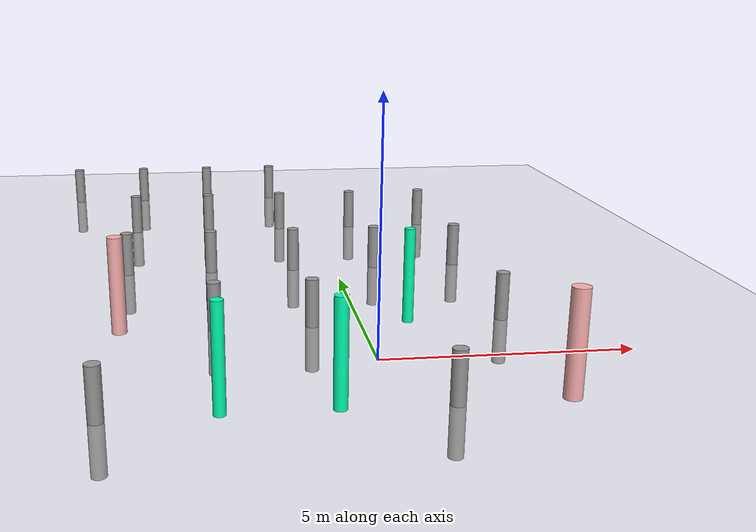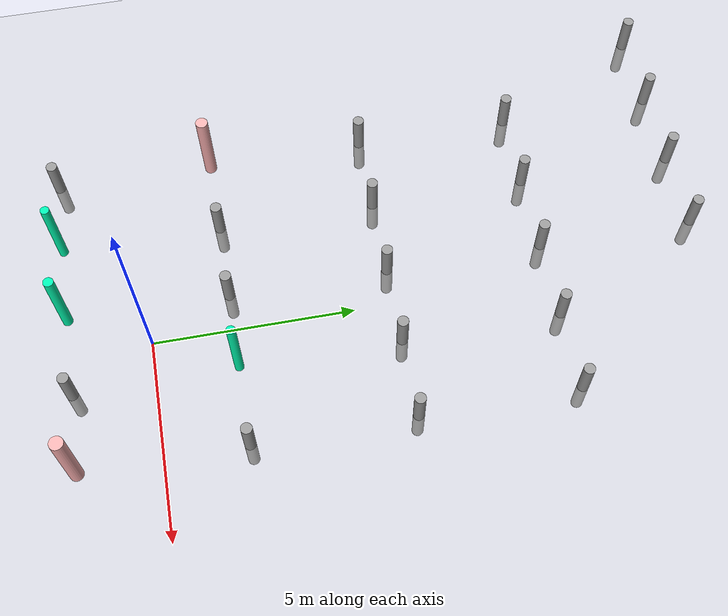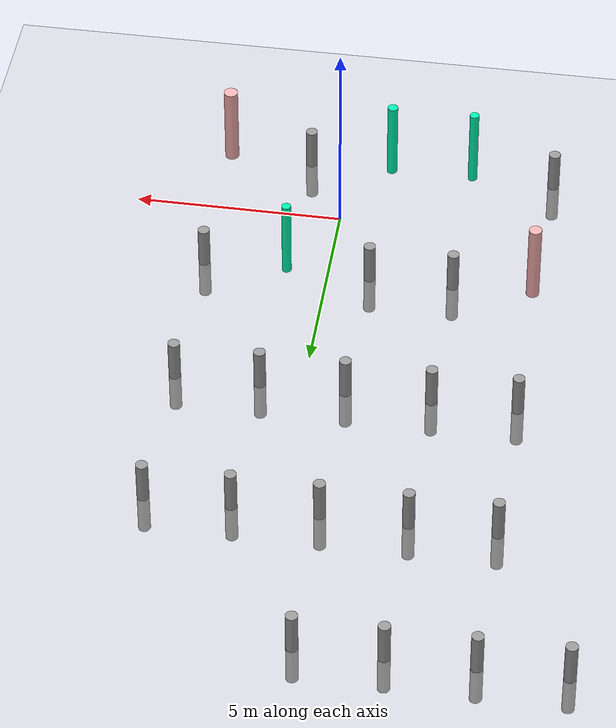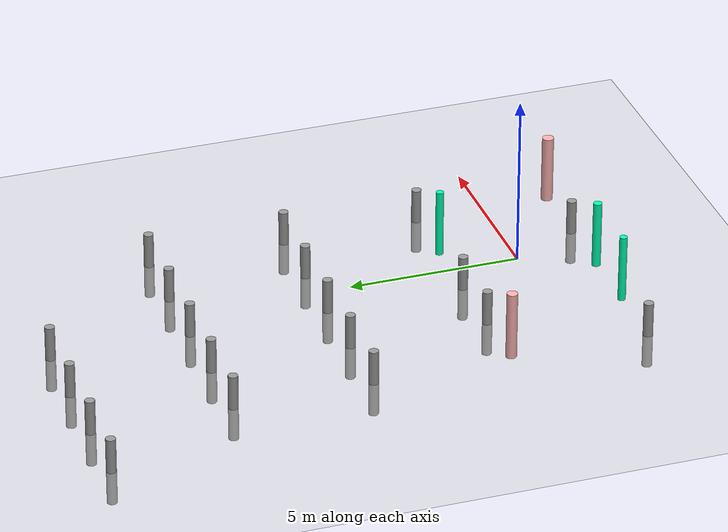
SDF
<sdf version="1.6">
 <world name="default">
  <model name="ground_plane">
   <static>1</static>
   <link name="link">
    <collision name="collision">
     <geometry><plane><normal>0 0 1</normal><size>100 100</size></plane></geometry>
     <surface><friction><ode><mu>100</mu><mu2>50</mu2></ode></friction></surface>
    </collision>
    <visual name="visual">
     <cast_shadows>0</cast_shadows>
     <geometry><plane><normal>0 0 1</normal><size>100 100</size></plane></geometry>
     <material>
      <script><uri>file://media/materials/scripts/gazebo.material</uri><name>Gazebo/Grey</name></script>
     </material>
    </visual>
   </link>
  </model>
  <model name="my_cylinder014_clone_53">
   <pose>-5 -2 0 0 -0 0</pose>
   <link name="my_cylinder014::link">
    <inertial>
     <mass>1</mass>
     <inertia><ixx>0.145833</ixx><ixy>0</ixy><ixz>0</ixz><iyy>0.145833</iyy><iyz>0</iyz><izz>0.125</izz></inertia>
    </inertial>
    <visual name="visual">
     <geometry><cylinder><radius>0.14</radius><length>2</length></cylinder></geometry>
     <material>
      <script><name>Gazebo/Grey</name><uri>file://media/materials/scripts/gazebo.material</uri></script>
      <ambient>0.3 0.3 0.3 1</ambient>
      <diffuse>0.7 0.7 0.7 1</diffuse>
      <specular>1 0.01 0.01 1</specular>
      <emissive>0 0 0 1</emissive>
      <shader type="vertex"><normal_map>__default__</normal_map></shader>
     </material>
    </visual>
    <collision name="collision">
     <geometry><cylinder><radius>0.14</radius><length>2</length></cylinder></geometry>
     <surface>
      <friction>
       <ode><mu>1</mu><mu2>1</mu2><fdir1>0 0 0</fdir1><slip1>0</slip1><slip2>0</slip2></ode>
       <torsional>
        <coefficient>1</coefficient>
        <patch_radius>0</patch_radius>
        <surface_radius>0</surface_radius>
        <use_patch_radius>1</use_patch_radius>
        <ode><slip>0</slip></ode>
       </torsional>
      </friction>
      <bounce><restitution_coefficient>0</restitution_coefficient><threshold>1e+06</threshold></bounce>
      <contact>
       <collide_without_contact>0</collide_without_contact>
       <collide_without_contact_bitmask>1</collide_without_contact_bitmask>
       <collide_bitmask>1</collide_bitmask>
       <ode>
        <soft_cfm>0</soft_cfm>
        <soft_erp>0.2</soft_erp>
        <kp>1e+13</kp>
        <kd>1</kd>
        <max_vel>0.01</max_vel>
        <min_depth>0</min_depth>
       </ode>
       <bullet>
        <split_impulse>1</split_impulse>
        <split_impulse_penetration_threshold>-0.01</split_impulse_penetration_threshold>
        <soft_cfm>0</soft_cfm>
        <soft_erp>0.2</soft_erp>
        <kp>1e+13</kp>
        <kd>1</kd>
       </bullet>
      </contact>
     </surface>
    </collision>
   </link>
   <static>1</static>
  </model>
  <model name="my_cylinder014_clone_56">
   <pose>1 -2 0 0 -0 0</pose>
   <link name="my_cylinder014::link">
    <inertial>
     <mass>1</mass>
     <inertia><ixx>0.145833</ixx><ixy>0</ixy><ixz>0</ixz><iyy>0.145833</iyy><iyz>0</iyz><izz>0.125</izz></inertia>
    </inertial>
    <visual name="visual">
     <geometry><cylinder><radius>0.14</radius><length>2</length></cylinder></geometry>
     <material>
      <script><name>Gazebo/Grey</name><uri>file://media/materials/scripts/gazebo.material</uri></script>
      <ambient>0.3 0.3 0.3 1</ambient>
      <diffuse>0.7 0.7 0.7 1</diffuse>
      <specular>1 0.01 0.01 1</specular>
      <emissive>0 0 0 1</emissive>
      <shader type="vertex"><normal_map>__default__</normal_map></shader>
     </material>
    </visual>
    <collision name="collision">
     <geometry><cylinder><radius>0.14</radius><length>2</length></cylinder></geometry>
     <surface>
      <friction>
       <ode><mu>1</mu><mu2>1</mu2><fdir1>0 0 0</fdir1><slip1>0</slip1><slip2>0</slip2></ode>
       <torsional>
        <coefficient>1</coefficient>
        <patch_radius>0</patch_radius>
        <surface_radius>0</surface_radius>
        <use_patch_radius>1</use_patch_radius>
        <ode><slip>0</slip></ode>
       </torsional>
      </friction>
      <bounce><restitution_coefficient>0</restitution_coefficient><threshold>1e+06</threshold></bounce>
      <contact>
       <collide_without_contact>0</collide_without_contact>
       <collide_without_contact_bitmask>1</collide_without_contact_bitmask>
       <collide_bitmask>1</collide_bitmask>
       <ode>
        <soft_cfm>0</soft_cfm>
        <soft_erp>0.2</soft_erp>
        <kp>1e+13</kp>
        <kd>1</kd>
        <max_vel>0.01</max_vel>
        <min_depth>0</min_depth>
       </ode>
       <bullet>
        <split_impulse>1</split_impulse>
        <split_impulse_penetration_threshold>-0.01</split_impulse_penetration_threshold>
        <soft_cfm>0</soft_cfm>
        <soft_erp>0.2</soft_erp>
        <kp>1e+13</kp>
        <kd>1</kd>
       </bullet>
      </contact>
     </surface>
    </collision>
   </link>
   <static>1</static>
  </model>
  <model name="my_cylinder014_clone_70">
   <pose>-3 2 0 0 -0 0</pose>
   <link name="my_cylinder014::link">
    <inertial>
     <mass>1</mass>
     <inertia><ixx>0.145833</ixx><ixy>0</ixy><ixz>0</ixz><iyy>0.145833</iyy><iyz>0</iyz><izz>0.125</izz></inertia>
    </inertial>
    <visual name="visual">
     <geometry><cylinder><radius>0.14</radius><length>2</length></cylinder></geometry>
     <material>
      <script><name>Gazebo/Grey</name><uri>file://media/materials/scripts/gazebo.material</uri></script>
      <ambient>0.3 0.3 0.3 1</ambient>
      <diffuse>0.7 0.7 0.7 1</diffuse>
      <specular>1 0.01 0.01 1</specular>
      <emissive>0 0 0 1</emissive>
      <shader type="vertex"><normal_map>__default__</normal_map></shader>
     </material>
    </visual>
    <collision name="collision">
     <geometry><cylinder><radius>0.14</radius><length>2</length></cylinder></geometry>
     <surface>
      <friction>
       <ode><mu>1</mu><mu2>1</mu2><fdir1>0 0 0</fdir1><slip1>0</slip1><slip2>0</slip2></ode>
       <torsional>
        <coefficient>1</coefficient>
        <patch_radius>0</patch_radius>
        <surface_radius>0</surface_radius>
        <use_patch_radius>1</use_patch_radius>
        <ode><slip>0</slip></ode>
       </torsional>
      </friction>
      <bounce><restitution_coefficient>0</restitution_coefficient><threshold>1e+06</threshold></bounce>
      <contact>
       <collide_without_contact>0</collide_without_contact>
       <collide_without_contact_bitmask>1</collide_without_contact_bitmask>
       <collide_bitmask>1</collide_bitmask>
       <ode>
        <soft_cfm>0</soft_cfm>
        <soft_erp>0.2</soft_erp>
        <kp>1e+13</kp>
        <kd>1</kd>
        <max_vel>0.01</max_vel>
        <min_depth>0</min_depth>
       </ode>
       <bullet>
        <split_impulse>1</split_impulse>
        <split_impulse_penetration_threshold>-0.01</split_impulse_penetration_threshold>
        <soft_cfm>0</soft_cfm>
        <soft_erp>0.2</soft_erp>
        <kp>1e+13</kp>
        <kd>1</kd>
       </bullet>
      </contact>
     </surface>
    </collision>
   </link>
   <static>1</static>
  </model>
  <model name="my_cylinder014_clone_71">
   <pose>-1 2 0 0 -0 0</pose>
   <link name="my_cylinder014::link">
    <inertial>
     <mass>1</mass>
     <inertia><ixx>0.145833</ixx><ixy>0</ixy><ixz>0</ixz><iyy>0.145833</iyy><iyz>0</iyz><izz>0.125</izz></inertia>
    </inertial>
    <visual name="visual">
     <geometry><cylinder><radius>0.14</radius><length>2</length></cylinder></geometry>
     <material>
      <script><name>Gazebo/Grey</name><uri>file://media/materials/scripts/gazebo.material</uri></script>
      <ambient>0.3 0.3 0.3 1</ambient>
      <diffuse>0.7 0.7 0.7 1</diffuse>
      <specular>1 0.01 0.01 1</specular>
      <emissive>0 0 0 1</emissive>
      <shader type="vertex"><normal_map>__default__</normal_map></shader>
     </material>
    </visual>
    <collision name="collision">
     <geometry><cylinder><radius>0.14</radius><length>2</length></cylinder></geometry>
     <surface>
      <friction>
       <ode><mu>1</mu><mu2>1</mu2><fdir1>0 0 0</fdir1><slip1>0</slip1><slip2>0</slip2></ode>
       <torsional>
        <coefficient>1</coefficient>
        <patch_radius>0</patch_radius>
        <surface_radius>0</surface_radius>
        <use_patch_radius>1</use_patch_radius>
        <ode><slip>0</slip></ode>
       </torsional>
      </friction>
      <bounce><restitution_coefficient>0</restitution_coefficient><threshold>1e+06</threshold></bounce>
      <contact>
       <collide_without_contact>0</collide_without_contact>
       <collide_without_contact_bitmask>1</collide_without_contact_bitmask>
       <collide_bitmask>1</collide_bitmask>
       <ode>
        <soft_cfm>0</soft_cfm>
        <soft_erp>0.2</soft_erp>
        <kp>1e+13</kp>
        <kd>1</kd>
        <max_vel>0.01</max_vel>
        <min_depth>0</min_depth>
       </ode>
       <bullet>
        <split_impulse>1</split_impulse>
        <split_impulse_penetration_threshold>-0.01</split_impulse_penetration_threshold>
        <soft_cfm>0</soft_cfm>
        <soft_erp>0.2</soft_erp>
        <kp>1e+13</kp>
        <kd>1</kd>
       </bullet>
      </contact>
     </surface>
    </collision>
   </link>
   <static>1</static>
  </model>
  <model name="my_cylinder014_clone_73">
   <pose>3 2 0 0 -0 0</pose>
   <link name="my_cylinder014::link">
    <inertial>
     <mass>1</mass>
     <inertia><ixx>0.145833</ixx><ixy>0</ixy><ixz>0</ixz><iyy>0.145833</iyy><iyz>0</iyz><izz>0.125</izz></inertia>
    </inertial>
    <visual name="visual">
     <geometry><cylinder><radius>0.14</radius><length>2</length></cylinder></geometry>
     <material>
      <script><name>Gazebo/Grey</name><uri>file://media/materials/scripts/gazebo.material</uri></script>
      <ambient>0.3 0.3 0.3 1</ambient>
      <diffuse>0.7 0.7 0.7 1</diffuse>
      <specular>1 0.01 0.01 1</specular>
      <emissive>0 0 0 1</emissive>
      <shader type="vertex"><normal_map>__default__</normal_map></shader>
     </material>
    </visual>
    <collision name="collision">
     <geometry><cylinder><radius>0.14</radius><length>2</length></cylinder></geometry>
     <surface>
      <friction>
       <ode><mu>1</mu><mu2>1</mu2><fdir1>0 0 0</fdir1><slip1>0</slip1><slip2>0</slip2></ode>
       <torsional>
        <coefficient>1</coefficient>
        <patch_radius>0</patch_radius>
        <surface_radius>0</surface_radius>
        <use_patch_radius>1</use_patch_radius>
        <ode><slip>0</slip></ode>
       </torsional>
      </friction>
      <bounce><restitution_coefficient>0</restitution_coefficient><threshold>1e+06</threshold></bounce>
      <contact>
       <collide_without_contact>0</collide_without_contact>
       <collide_without_contact_bitmask>1</collide_without_contact_bitmask>
       <collide_bitmask>1</collide_bitmask>
       <ode>
        <soft_cfm>0</soft_cfm>
        <soft_erp>0.2</soft_erp>
        <kp>1e+13</kp>
        <kd>1</kd>
        <max_vel>0.01</max_vel>
        <min_depth>0</min_depth>
       </ode>
       <bullet>
        <split_impulse>1</split_impulse>
        <split_impulse_penetration_threshold>-0.01</split_impulse_penetration_threshold>
        <soft_cfm>0</soft_cfm>
        <soft_erp>0.2</soft_erp>
        <kp>1e+13</kp>
        <kd>1</kd>
       </bullet>
      </contact>
     </surface>
    </collision>
   </link>
   <static>1</static>
  </model>
  <model name="my_cylinder014_clone_85">
   <pose>-5 6 0 0 -0 0</pose>
   <link name="my_cylinder014::link">
    <inertial>
     <mass>1</mass>
     <inertia><ixx>0.145833</ixx><ixy>0</ixy><ixz>0</ixz><iyy>0.145833</iyy><iyz>0</iyz><izz>0.125</izz></inertia>
    </inertial>
    <visual name="visual">
     <geometry><cylinder><radius>0.14</radius><length>2</length></cylinder></geometry>
     <material>
      <script><name>Gazebo/Grey</name><uri>file://media/materials/scripts/gazebo.material</uri></script>
      <ambient>0.3 0.3 0.3 1</ambient>
      <diffuse>0.7 0.7 0.7 1</diffuse>
      <specular>1 0.01 0.01 1</specular>
      <emissive>0 0 0 1</emissive>
      <shader type="vertex"><normal_map>__default__</normal_map></shader>
     </material>
    </visual>
    <collision name="collision">
     <geometry><cylinder><radius>0.14</radius><length>2</length></cylinder></geometry>
     <surface>
      <friction>
       <ode><mu>1</mu><mu2>1</mu2><fdir1>0 0 0</fdir1><slip1>0</slip1><slip2>0</slip2></ode>
       <torsional>
        <coefficient>1</coefficient>
        <patch_radius>0</patch_radius>
        <surface_radius>0</surface_radius>
        <use_patch_radius>1</use_patch_radius>
        <ode><slip>0</slip></ode>
       </torsional>
      </friction>
      <bounce><restitution_coefficient>0</restitution_coefficient><threshold>1e+06</threshold></bounce>
      <contact>
       <collide_without_contact>0</collide_without_contact>
       <collide_without_contact_bitmask>1</collide_without_contact_bitmask>
       <collide_bitmask>1</collide_bitmask>
       <ode>
        <soft_cfm>0</soft_cfm>
        <soft_erp>0.2</soft_erp>
        <kp>1e+13</kp>
        <kd>1</kd>
        <max_vel>0.01</max_vel>
        <min_depth>0</min_depth>
       </ode>
       <bullet>
        <split_impulse>1</split_impulse>
        <split_impulse_penetration_threshold>-0.01</split_impulse_penetration_threshold>
        <soft_cfm>0</soft_cfm>
        <soft_erp>0.2</soft_erp>
        <kp>1e+13</kp>
        <kd>1</kd>
       </bullet>
      </contact>
     </surface>
    </collision>
   </link>
   <static>1</static>
  </model>
  <model name="my_cylinder014_clone_86">
   <pose>-3 6 0 0 -0 0</pose>
   <link name="my_cylinder014::link">
    <inertial>
     <mass>1</mass>
     <inertia><ixx>0.145833</ixx><ixy>0</ixy><ixz>0</ixz><iyy>0.145833</iyy><iyz>0</iyz><izz>0.125</izz></inertia>
    </inertial>
    <visual name="visual">
     <geometry><cylinder><radius>0.14</radius><length>2</length></cylinder></geometry>
     <material>
      <script><name>Gazebo/Grey</name><uri>file://media/materials/scripts/gazebo.material</uri></script>
      <ambient>0.3 0.3 0.3 1</ambient>
      <diffuse>0.7 0.7 0.7 1</diffuse>
      <specular>1 0.01 0.01 1</specular>
      <emissive>0 0 0 1</emissive>
      <shader type="vertex"><normal_map>__default__</normal_map></shader>
     </material>
    </visual>
    <collision name="collision">
     <geometry><cylinder><radius>0.14</radius><length>2</length></cylinder></geometry>
     <surface>
      <friction>
       <ode><mu>1</mu><mu2>1</mu2><fdir1>0 0 0</fdir1><slip1>0</slip1><slip2>0</slip2></ode>
       <torsional>
        <coefficient>1</coefficient>
        <patch_radius>0</patch_radius>
        <surface_radius>0</surface_radius>
        <use_patch_radius>1</use_patch_radius>
        <ode><slip>0</slip></ode>
       </torsional>
      </friction>
      <bounce><restitution_coefficient>0</restitution_coefficient><threshold>1e+06</threshold></bounce>
      <contact>
       <collide_without_contact>0</collide_without_contact>
       <collide_without_contact_bitmask>1</collide_without_contact_bitmask>
       <collide_bitmask>1</collide_bitmask>
       <ode>
        <soft_cfm>0</soft_cfm>
        <soft_erp>0.2</soft_erp>
        <kp>1e+13</kp>
        <kd>1</kd>
        <max_vel>0.01</max_vel>
        <min_depth>0</min_depth>
       </ode>
       <bullet>
        <split_impulse>1</split_impulse>
        <split_impulse_penetration_threshold>-0.01</split_impulse_penetration_threshold>
        <soft_cfm>0</soft_cfm>
        <soft_erp>0.2</soft_erp>
        <kp>1e+13</kp>
        <kd>1</kd>
       </bullet>
      </contact>
     </surface>
    </collision>
   </link>
   <static>1</static>
  </model>
  <model name="my_cylinder014_clone_87">
   <pose>-1 6 0 0 -0 0</pose>
   <link name="my_cylinder014::link">
    <inertial>
     <mass>1</mass>
     <inertia><ixx>0.145833</ixx><ixy>0</ixy><ixz>0</ixz><iyy>0.145833</iyy><iyz>0</iyz><izz>0.125</izz></inertia>
    </inertial>
    <visual name="visual">
     <geometry><cylinder><radius>0.14</radius><length>2</length></cylinder></geometry>
     <material>
      <script><name>Gazebo/Grey</name><uri>file://media/materials/scripts/gazebo.material</uri></script>
      <ambient>0.3 0.3 0.3 1</ambient>
      <diffuse>0.7 0.7 0.7 1</diffuse>
      <specular>1 0.01 0.01 1</specular>
      <emissive>0 0 0 1</emissive>
      <shader type="vertex"><normal_map>__default__</normal_map></shader>
     </material>
    </visual>
    <collision name="collision">
     <geometry><cylinder><radius>0.14</radius><length>2</length></cylinder></geometry>
     <surface>
      <friction>
       <ode><mu>1</mu><mu2>1</mu2><fdir1>0 0 0</fdir1><slip1>0</slip1><slip2>0</slip2></ode>
       <torsional>
        <coefficient>1</coefficient>
        <patch_radius>0</patch_radius>
        <surface_radius>0</surface_radius>
        <use_patch_radius>1</use_patch_radius>
        <ode><slip>0</slip></ode>
       </torsional>
      </friction>
      <bounce><restitution_coefficient>0</restitution_coefficient><threshold>1e+06</threshold></bounce>
      <contact>
       <collide_without_contact>0</collide_without_contact>
       <collide_without_contact_bitmask>1</collide_without_contact_bitmask>
       <collide_bitmask>1</collide_bitmask>
       <ode>
        <soft_cfm>0</soft_cfm>
        <soft_erp>0.2</soft_erp>
        <kp>1e+13</kp>
        <kd>1</kd>
        <max_vel>0.01</max_vel>
        <min_depth>0</min_depth>
       </ode>
       <bullet>
        <split_impulse>1</split_impulse>
        <split_impulse_penetration_threshold>-0.01</split_impulse_penetration_threshold>
        <soft_cfm>0</soft_cfm>
        <soft_erp>0.2</soft_erp>
        <kp>1e+13</kp>
        <kd>1</kd>
       </bullet>
      </contact>
     </surface>
    </collision>
   </link>
   <static>1</static>
  </model>
  <model name="my_cylinder014_clone_88">
   <pose>1 6 0 0 -0 0</pose>
   <link name="my_cylinder014::link">
    <inertial>
     <mass>1</mass>
     <inertia><ixx>0.145833</ixx><ixy>0</ixy><ixz>0</ixz><iyy>0.145833</iyy><iyz>0</iyz><izz>0.125</izz></inertia>
    </inertial>
    <visual name="visual">
     <geometry><cylinder><radius>0.14</radius><length>2</length></cylinder></geometry>
     <material>
      <script><name>Gazebo/Grey</name><uri>file://media/materials/scripts/gazebo.material</uri></script>
      <ambient>0.3 0.3 0.3 1</ambient>
      <diffuse>0.7 0.7 0.7 1</diffuse>
      <specular>1 0.01 0.01 1</specular>
      <emissive>0 0 0 1</emissive>
      <shader type="vertex"><normal_map>__default__</normal_map></shader>
     </material>
    </visual>
    <collision name="collision">
     <geometry><cylinder><radius>0.14</radius><length>2</length></cylinder></geometry>
     <surface>
      <friction>
       <ode><mu>1</mu><mu2>1</mu2><fdir1>0 0 0</fdir1><slip1>0</slip1><slip2>0</slip2></ode>
       <torsional>
        <coefficient>1</coefficient>
        <patch_radius>0</patch_radius>
        <surface_radius>0</surface_radius>
        <use_patch_radius>1</use_patch_radius>
        <ode><slip>0</slip></ode>
       </torsional>
      </friction>
      <bounce><restitution_coefficient>0</restitution_coefficient><threshold>1e+06</threshold></bounce>
      <contact>
       <collide_without_contact>0</collide_without_contact>
       <collide_without_contact_bitmask>1</collide_without_contact_bitmask>
       <collide_bitmask>1</collide_bitmask>
       <ode>
        <soft_cfm>0</soft_cfm>
        <soft_erp>0.2</soft_erp>
        <kp>1e+13</kp>
        <kd>1</kd>
        <max_vel>0.01</max_vel>
        <min_depth>0</min_depth>
       </ode>
       <bullet>
        <split_impulse>1</split_impulse>
        <split_impulse_penetration_threshold>-0.01</split_impulse_penetration_threshold>
        <soft_cfm>0</soft_cfm>
        <soft_erp>0.2</soft_erp>
        <kp>1e+13</kp>
        <kd>1</kd>
       </bullet>
      </contact>
     </surface>
    </collision>
   </link>
   <static>1</static>
  </model>
  <model name="my_cylinder014_clone_89">
   <pose>3 6 0 0 -0 0</pose>
   <link name="my_cylinder014::link">
    <inertial>
     <mass>1</mass>
     <inertia><ixx>0.145833</ixx><ixy>0</ixy><ixz>0</ixz><iyy>0.145833</iyy><iyz>0</iyz><izz>0.125</izz></inertia>
    </inertial>
    <visual name="visual">
     <geometry><cylinder><radius>0.14</radius><length>2</length></cylinder></geometry>
     <material>
      <script><name>Gazebo/Grey</name><uri>file://media/materials/scripts/gazebo.material</uri></script>
      <ambient>0.3 0.3 0.3 1</ambient>
      <diffuse>0.7 0.7 0.7 1</diffuse>
      <specular>1 0.01 0.01 1</specular>
      <emissive>0 0 0 1</emissive>
      <shader type="vertex"><normal_map>__default__</normal_map></shader>
     </material>
    </visual>
    <collision name="collision">
     <geometry><cylinder><radius>0.14</radius><length>2</length></cylinder></geometry>
     <surface>
      <friction>
       <ode><mu>1</mu><mu2>1</mu2><fdir1>0 0 0</fdir1><slip1>0</slip1><slip2>0</slip2></ode>
       <torsional>
        <coefficient>1</coefficient>
        <patch_radius>0</patch_radius>
        <surface_radius>0</surface_radius>
        <use_patch_radius>1</use_patch_radius>
        <ode><slip>0</slip></ode>
       </torsional>
      </friction>
      <bounce><restitution_coefficient>0</restitution_coefficient><threshold>1e+06</threshold></bounce>
      <contact>
       <collide_without_contact>0</collide_without_contact>
       <collide_without_contact_bitmask>1</collide_without_contact_bitmask>
       <collide_bitmask>1</collide_bitmask>
       <ode>
        <soft_cfm>0</soft_cfm>
        <soft_erp>0.2</soft_erp>
        <kp>1e+13</kp>
        <kd>1</kd>
        <max_vel>0.01</max_vel>
        <min_depth>0</min_depth>
       </ode>
       <bullet>
        <split_impulse>1</split_impulse>
        <split_impulse_penetration_threshold>-0.01</split_impulse_penetration_threshold>
        <soft_cfm>0</soft_cfm>
        <soft_erp>0.2</soft_erp>
        <kp>1e+13</kp>
        <kd>1</kd>
       </bullet>
      </contact>
     </surface>
    </collision>
   </link>
   <static>1</static>
  </model>
  <model name="my_cylinder014_clone_101">
   <pose>-5 10 0 0 -0 0</pose>
   <link name="my_cylinder014::link">
    <inertial>
     <mass>1</mass>
     <inertia><ixx>0.145833</ixx><ixy>0</ixy><ixz>0</ixz><iyy>0.145833</iyy><iyz>0</iyz><izz>0.125</izz></inertia>
    </inertial>
    <visual name="visual">
     <geometry><cylinder><radius>0.14</radius><length>2</length></cylinder></geometry>
     <material>
      <script><name>Gazebo/Grey</name><uri>file://media/materials/scripts/gazebo.material</uri></script>
      <ambient>0.3 0.3 0.3 1</ambient>
      <diffuse>0.7 0.7 0.7 1</diffuse>
      <specular>1 0.01 0.01 1</specular>
      <emissive>0 0 0 1</emissive>
      <shader type="vertex"><normal_map>__default__</normal_map></shader>
     </material>
    </visual>
    <collision name="collision">
     <geometry><cylinder><radius>0.14</radius><length>2</length></cylinder></geometry>
     <surface>
      <friction>
       <ode><mu>1</mu><mu2>1</mu2><fdir1>0 0 0</fdir1><slip1>0</slip1><slip2>0</slip2></ode>
       <torsional>
        <coefficient>1</coefficient>
        <patch_radius>0</patch_radius>
        <surface_radius>0</surface_radius>
        <use_patch_radius>1</use_patch_radius>
        <ode><slip>0</slip></ode>
       </torsional>
      </friction>
      <bounce><restitution_coefficient>0</restitution_coefficient><threshold>1e+06</threshold></bounce>
      <contact>
       <collide_without_contact>0</collide_without_contact>
       <collide_without_contact_bitmask>1</collide_without_contact_bitmask>
       <collide_bitmask>1</collide_bitmask>
       <ode>
        <soft_cfm>0</soft_cfm>
        <soft_erp>0.2</soft_erp>
        <kp>1e+13</kp>
        <kd>1</kd>
        <max_vel>0.01</max_vel>
        <min_depth>0</min_depth>
       </ode>
       <bullet>
        <split_impulse>1</split_impulse>
        <split_impulse_penetration_threshold>-0.01</split_impulse_penetration_threshold>
        <soft_cfm>0</soft_cfm>
        <soft_erp>0.2</soft_erp>
        <kp>1e+13</kp>
        <kd>1</kd>
       </bullet>
      </contact>
     </surface>
    </collision>
   </link>
   <static>1</static>
  </model>
  <model name="my_cylinder014_clone_102">
   <pose>-3 10 0 0 -0 0</pose>
   <link name="my_cylinder014::link">
    <inertial>
     <mass>1</mass>
     <inertia><ixx>0.145833</ixx><ixy>0</ixy><ixz>0</ixz><iyy>0.145833</iyy><iyz>0</iyz><izz>0.125</izz></inertia>
    </inertial>
    <visual name="visual">
     <geometry><cylinder><radius>0.14</radius><length>2</length></cylinder></geometry>
     <material>
      <script><name>Gazebo/Grey</name><uri>file://media/materials/scripts/gazebo.material</uri></script>
      <ambient>0.3 0.3 0.3 1</ambient>
      <diffuse>0.7 0.7 0.7 1</diffuse>
      <specular>1 0.01 0.01 1</specular>
      <emissive>0 0 0 1</emissive>
      <shader type="vertex"><normal_map>__default__</normal_map></shader>
     </material>
    </visual>
    <collision name="collision">
     <geometry><cylinder><radius>0.14</radius><length>2</length></cylinder></geometry>
     <surface>
      <friction>
       <ode><mu>1</mu><mu2>1</mu2><fdir1>0 0 0</fdir1><slip1>0</slip1><slip2>0</slip2></ode>
       <torsional>
        <coefficient>1</coefficient>
        <patch_radius>0</patch_radius>
        <surface_radius>0</surface_radius>
        <use_patch_radius>1</use_patch_radius>
        <ode><slip>0</slip></ode>
       </torsional>
      </friction>
      <bounce><restitution_coefficient>0</restitution_coefficient><threshold>1e+06</threshold></bounce>
      <contact>
       <collide_without_contact>0</collide_without_contact>
       <collide_without_contact_bitmask>1</collide_without_contact_bitmask>
       <collide_bitmask>1</collide_bitmask>
       <ode>
        <soft_cfm>0</soft_cfm>
        <soft_erp>0.2</soft_erp>
        <kp>1e+13</kp>
        <kd>1</kd>
        <max_vel>0.01</max_vel>
        <min_depth>0</min_depth>
       </ode>
       <bullet>
        <split_impulse>1</split_impulse>
        <split_impulse_penetration_threshold>-0.01</split_impulse_penetration_threshold>
        <soft_cfm>0</soft_cfm>
        <soft_erp>0.2</soft_erp>
        <kp>1e+13</kp>
        <kd>1</kd>
       </bullet>
      </contact>
     </surface>
    </collision>
   </link>
   <static>1</static>
  </model>
  <model name="my_cylinder014_clone_103">
   <pose>-1 10 0 0 -0 0</pose>
   <link name="my_cylinder014::link">
    <inertial>
     <mass>1</mass>
     <inertia><ixx>0.145833</ixx><ixy>0</ixy><ixz>0</ixz><iyy>0.145833</iyy><iyz>0</iyz><izz>0.125</izz></inertia>
    </inertial>
    <visual name="visual">
     <geometry><cylinder><radius>0.14</radius><length>2</length></cylinder></geometry>
     <material>
      <script><name>Gazebo/Grey</name><uri>file://media/materials/scripts/gazebo.material</uri></script>
      <ambient>0.3 0.3 0.3 1</ambient>
      <diffuse>0.7 0.7 0.7 1</diffuse>
      <specular>1 0.01 0.01 1</specular>
      <emissive>0 0 0 1</emissive>
      <shader type="vertex"><normal_map>__default__</normal_map></shader>
     </material>
    </visual>
    <collision name="collision">
     <geometry><cylinder><radius>0.14</radius><length>2</length></cylinder></geometry>
     <surface>
      <friction>
       <ode><mu>1</mu><mu2>1</mu2><fdir1>0 0 0</fdir1><slip1>0</slip1><slip2>0</slip2></ode>
       <torsional>
        <coefficient>1</coefficient>
        <patch_radius>0</patch_radius>
        <surface_radius>0</surface_radius>
        <use_patch_radius>1</use_patch_radius>
        <ode><slip>0</slip></ode>
       </torsional>
      </friction>
      <bounce><restitution_coefficient>0</restitution_coefficient><threshold>1e+06</threshold></bounce>
      <contact>
       <collide_without_contact>0</collide_without_contact>
       <collide_without_contact_bitmask>1</collide_without_contact_bitmask>
       <collide_bitmask>1</collide_bitmask>
       <ode>
        <soft_cfm>0</soft_cfm>
        <soft_erp>0.2</soft_erp>
        <kp>1e+13</kp>
        <kd>1</kd>
        <max_vel>0.01</max_vel>
        <min_depth>0</min_depth>
       </ode>
       <bullet>
        <split_impulse>1</split_impulse>
        <split_impulse_penetration_threshold>-0.01</split_impulse_penetration_threshold>
        <soft_cfm>0</soft_cfm>
        <soft_erp>0.2</soft_erp>
        <kp>1e+13</kp>
        <kd>1</kd>
       </bullet>
      </contact>
     </surface>
    </collision>
   </link>
   <static>1</static>
  </model>
  <model name="my_cylinder014_clone_104">
   <pose>1 10 0 0 -0 0</pose>
   <link name="my_cylinder014::link">
    <inertial>
     <mass>1</mass>
     <inertia><ixx>0.145833</ixx><ixy>0</ixy><ixz>0</ixz><iyy>0.145833</iyy><iyz>0</iyz><izz>0.125</izz></inertia>
    </inertial>
    <visual name="visual">
     <geometry><cylinder><radius>0.14</radius><length>2</length></cylinder></geometry>
     <material>
      <script><name>Gazebo/Grey</name><uri>file://media/materials/scripts/gazebo.material</uri></script>
      <ambient>0.3 0.3 0.3 1</ambient>
      <diffuse>0.7 0.7 0.7 1</diffuse>
      <specular>1 0.01 0.01 1</specular>
      <emissive>0 0 0 1</emissive>
      <shader type="vertex"><normal_map>__default__</normal_map></shader>
     </material>
    </visual>
    <collision name="collision">
     <geometry><cylinder><radius>0.14</radius><length>2</length></cylinder></geometry>
     <surface>
      <friction>
       <ode><mu>1</mu><mu2>1</mu2><fdir1>0 0 0</fdir1><slip1>0</slip1><slip2>0</slip2></ode>
       <torsional>
        <coefficient>1</coefficient>
        <patch_radius>0</patch_radius>
        <surface_radius>0</surface_radius>
        <use_patch_radius>1</use_patch_radius>
        <ode><slip>0</slip></ode>
       </torsional>
      </friction>
      <bounce><restitution_coefficient>0</restitution_coefficient><threshold>1e+06</threshold></bounce>
      <contact>
       <collide_without_contact>0</collide_without_contact>
       <collide_without_contact_bitmask>1</collide_without_contact_bitmask>
       <collide_bitmask>1</collide_bitmask>
       <ode>
        <soft_cfm>0</soft_cfm>
        <soft_erp>0.2</soft_erp>
        <kp>1e+13</kp>
        <kd>1</kd>
        <max_vel>0.01</max_vel>
        <min_depth>0</min_depth>
       </ode>
       <bullet>
        <split_impulse>1</split_impulse>
        <split_impulse_penetration_threshold>-0.01</split_impulse_penetration_threshold>
        <soft_cfm>0</soft_cfm>
        <soft_erp>0.2</soft_erp>
        <kp>1e+13</kp>
        <kd>1</kd>
       </bullet>
      </contact>
     </surface>
    </collision>
   </link>
   <static>1</static>
  </model>
  <model name="my_cylinder014_clone_105">
   <pose>3 10 0 0 -0 0</pose>
   <link name="my_cylinder014::link">
    <inertial>
     <mass>1</mass>
     <inertia><ixx>0.145833</ixx><ixy>0</ixy><ixz>0</ixz><iyy>0.145833</iyy><iyz>0</iyz><izz>0.125</izz></inertia>
    </inertial>
    <visual name="visual">
     <geometry><cylinder><radius>0.14</radius><length>2</length></cylinder></geometry>
     <material>
      <script><name>Gazebo/Grey</name><uri>file://media/materials/scripts/gazebo.material</uri></script>
      <ambient>0.3 0.3 0.3 1</ambient>
      <diffuse>0.7 0.7 0.7 1</diffuse>
      <specular>1 0.01 0.01 1</specular>
      <emissive>0 0 0 1</emissive>
      <shader type="vertex"><normal_map>__default__</normal_map></shader>
     </material>
    </visual>
    <collision name="collision">
     <geometry><cylinder><radius>0.14</radius><length>2</length></cylinder></geometry>
     <surface>
      <friction>
       <ode><mu>1</mu><mu2>1</mu2><fdir1>0 0 0</fdir1><slip1>0</slip1><slip2>0</slip2></ode>
       <torsional>
        <coefficient>1</coefficient>
        <patch_radius>0</patch_radius>
        <surface_radius>0</surface_radius>
        <use_patch_radius>1</use_patch_radius>
        <ode><slip>0</slip></ode>
       </torsional>
      </friction>
      <bounce><restitution_coefficient>0</restitution_coefficient><threshold>1e+06</threshold></bounce>
      <contact>
       <collide_without_contact>0</collide_without_contact>
       <collide_without_contact_bitmask>1</collide_without_contact_bitmask>
       <collide_bitmask>1</collide_bitmask>
       <ode>
        <soft_cfm>0</soft_cfm>
        <soft_erp>0.2</soft_erp>
        <kp>1e+13</kp>
        <kd>1</kd>
        <max_vel>0.01</max_vel>
        <min_depth>0</min_depth>
       </ode>
       <bullet>
        <split_impulse>1</split_impulse>
        <split_impulse_penetration_threshold>-0.01</split_impulse_penetration_threshold>
        <soft_cfm>0</soft_cfm>
        <soft_erp>0.2</soft_erp>
        <kp>1e+13</kp>
        <kd>1</kd>
       </bullet>
      </contact>
     </surface>
    </collision>
   </link>
   <static>1</static>
  </model>
  <model name="my_cylinder014_clone_116">
   <pose>-7 14 0 0 -0 0</pose>
   <link name="my_cylinder014::link">
    <inertial>
     <mass>1</mass>
     <inertia><ixx>0.145833</ixx><ixy>0</ixy><ixz>0</ixz><iyy>0.145833</iyy><iyz>0</iyz><izz>0.125</izz></inertia>
    </inertial>
    <visual name="visual">
     <geometry><cylinder><radius>0.14</radius><length>2</length></cylinder></geometry>
     <material>
      <script><name>Gazebo/Grey</name><uri>file://media/materials/scripts/gazebo.material</uri></script>
      <ambient>0.3 0.3 0.3 1</ambient>
      <diffuse>0.7 0.7 0.7 1</diffuse>
      <specular>1 0.01 0.01 1</specular>
      <emissive>0 0 0 1</emissive>
      <shader type="vertex"><normal_map>__default__</normal_map></shader>
     </material>
    </visual>
    <collision name="collision">
     <geometry><cylinder><radius>0.14</radius><length>2</length></cylinder></geometry>
     <surface>
      <friction>
       <ode><mu>1</mu><mu2>1</mu2><fdir1>0 0 0</fdir1><slip1>0</slip1><slip2>0</slip2></ode>
       <torsional>
        <coefficient>1</coefficient>
        <patch_radius>0</patch_radius>
        <surface_radius>0</surface_radius>
        <use_patch_radius>1</use_patch_radius>
        <ode><slip>0</slip></ode>
       </torsional>
      </friction>
      <bounce><restitution_coefficient>0</restitution_coefficient><threshold>1e+06</threshold></bounce>
      <contact>
       <collide_without_contact>0</collide_without_contact>
       <collide_without_contact_bitmask>1</collide_without_contact_bitmask>
       <collide_bitmask>1</collide_bitmask>
       <ode>
        <soft_cfm>0</soft_cfm>
        <soft_erp>0.2</soft_erp>
        <kp>1e+13</kp>
        <kd>1</kd>
        <max_vel>0.01</max_vel>
        <min_depth>0</min_depth>
       </ode>
       <bullet>
        <split_impulse>1</split_impulse>
        <split_impulse_penetration_threshold>-0.01</split_impulse_penetration_threshold>
        <soft_cfm>0</soft_cfm>
        <soft_erp>0.2</soft_erp>
        <kp>1e+13</kp>
        <kd>1</kd>
       </bullet>
      </contact>
     </surface>
    </collision>
   </link>
   <static>1</static>
  </model>
  <model name="my_cylinder014_clone_117">
   <pose>-5 14 0 0 -0 0</pose>
   <link name="my_cylinder014::link">
    <inertial>
     <mass>1</mass>
     <inertia><ixx>0.145833</ixx><ixy>0</ixy><ixz>0</ixz><iyy>0.145833</iyy><iyz>0</iyz><izz>0.125</izz></inertia>
    </inertial>
    <visual name="visual">
     <geometry><cylinder><radius>0.14</radius><length>2</length></cylinder></geometry>
     <material>
      <script><name>Gazebo/Grey</name><uri>file://media/materials/scripts/gazebo.material</uri></script>
      <ambient>0.3 0.3 0.3 1</ambient>
      <diffuse>0.7 0.7 0.7 1</diffuse>
      <specular>1 0.01 0.01 1</specular>
      <emissive>0 0 0 1</emissive>
      <shader type="vertex"><normal_map>__default__</normal_map></shader>
     </material>
    </visual>
    <collision name="collision">
     <geometry><cylinder><radius>0.14</radius><length>2</length></cylinder></geometry>
     <surface>
      <friction>
       <ode><mu>1</mu><mu2>1</mu2><fdir1>0 0 0</fdir1><slip1>0</slip1><slip2>0</slip2></ode>
       <torsional>
        <coefficient>1</coefficient>
        <patch_radius>0</patch_radius>
        <surface_radius>0</surface_radius>
        <use_patch_radius>1</use_patch_radius>
        <ode><slip>0</slip></ode>
       </torsional>
      </friction>
      <bounce><restitution_coefficient>0</restitution_coefficient><threshold>1e+06</threshold></bounce>
      <contact>
       <collide_without_contact>0</collide_without_contact>
       <collide_without_contact_bitmask>1</collide_without_contact_bitmask>
       <collide_bitmask>1</collide_bitmask>
       <ode>
        <soft_cfm>0</soft_cfm>
        <soft_erp>0.2</soft_erp>
        <kp>1e+13</kp>
        <kd>1</kd>
        <max_vel>0.01</max_vel>
        <min_depth>0</min_depth>
       </ode>
       <bullet>
        <split_impulse>1</split_impulse>
        <split_impulse_penetration_threshold>-0.01</split_impulse_penetration_threshold>
        <soft_cfm>0</soft_cfm>
        <soft_erp>0.2</soft_erp>
        <kp>1e+13</kp>
        <kd>1</kd>
       </bullet>
      </contact>
     </surface>
    </collision>
   </link>
   <static>1</static>
  </model>
  <model name="my_cylinder014_clone_118">
   <pose>-3 14 0 0 -0 0</pose>
   <link name="my_cylinder014::link">
    <inertial>
     <mass>1</mass>
     <inertia><ixx>0.145833</ixx><ixy>0</ixy><ixz>0</ixz><iyy>0.145833</iyy><iyz>0</iyz><izz>0.125</izz></inertia>
    </inertial>
    <visual name="visual">
     <geometry><cylinder><radius>0.14</radius><length>2</length></cylinder></geometry>
     <material>
      <script><name>Gazebo/Grey</name><uri>file://media/materials/scripts/gazebo.material</uri></script>
      <ambient>0.3 0.3 0.3 1</ambient>
      <diffuse>0.7 0.7 0.7 1</diffuse>
      <specular>1 0.01 0.01 1</specular>
      <emissive>0 0 0 1</emissive>
      <shader type="vertex"><normal_map>__default__</normal_map></shader>
     </material>
    </visual>
    <collision name="collision">
     <geometry><cylinder><radius>0.14</radius><length>2</length></cylinder></geometry>
     <surface>
      <friction>
       <ode><mu>1</mu><mu2>1</mu2><fdir1>0 0 0</fdir1><slip1>0</slip1><slip2>0</slip2></ode>
       <torsional>
        <coefficient>1</coefficient>
        <patch_radius>0</patch_radius>
        <surface_radius>0</surface_radius>
        <use_patch_radius>1</use_patch_radius>
        <ode><slip>0</slip></ode>
       </torsional>
      </friction>
      <bounce><restitution_coefficient>0</restitution_coefficient><threshold>1e+06</threshold></bounce>
      <contact>
       <collide_without_contact>0</collide_without_contact>
       <collide_without_contact_bitmask>1</collide_without_contact_bitmask>
       <collide_bitmask>1</collide_bitmask>
       <ode>
        <soft_cfm>0</soft_cfm>
        <soft_erp>0.2</soft_erp>
        <kp>1e+13</kp>
        <kd>1</kd>
        <max_vel>0.01</max_vel>
        <min_depth>0</min_depth>
       </ode>
       <bullet>
        <split_impulse>1</split_impulse>
        <split_impulse_penetration_threshold>-0.01</split_impulse_penetration_threshold>
        <soft_cfm>0</soft_cfm>
        <soft_erp>0.2</soft_erp>
        <kp>1e+13</kp>
        <kd>1</kd>
       </bullet>
      </contact>
     </surface>
    </collision>
   </link>
   <static>1</static>
  </model>
  <model name="my_cylinder014_clone_119">
   <pose>-1 14 0 0 -0 0</pose>
   <link name="my_cylinder014::link">
    <inertial>
     <mass>1</mass>
     <inertia><ixx>0.145833</ixx><ixy>0</ixy><ixz>0</ixz><iyy>0.145833</iyy><iyz>0</iyz><izz>0.125</izz></inertia>
    </inertial>
    <visual name="visual">
     <geometry><cylinder><radius>0.14</radius><length>2</length></cylinder></geometry>
     <material>
      <script><name>Gazebo/Grey</name><uri>file://media/materials/scripts/gazebo.material</uri></script>
      <ambient>0.3 0.3 0.3 1</ambient>
      <diffuse>0.7 0.7 0.7 1</diffuse>
      <specular>1 0.01 0.01 1</specular>
      <emissive>0 0 0 1</emissive>
      <shader type="vertex"><normal_map>__default__</normal_map></shader>
     </material>
    </visual>
    <collision name="collision">
     <geometry><cylinder><radius>0.14</radius><length>2</length></cylinder></geometry>
     <surface>
      <friction>
       <ode><mu>1</mu><mu2>1</mu2><fdir1>0 0 0</fdir1><slip1>0</slip1><slip2>0</slip2></ode>
       <torsional>
        <coefficient>1</coefficient>
        <patch_radius>0</patch_radius>
        <surface_radius>0</surface_radius>
        <use_patch_radius>1</use_patch_radius>
        <ode><slip>0</slip></ode>
       </torsional>
      </friction>
      <bounce><restitution_coefficient>0</restitution_coefficient><threshold>1e+06</threshold></bounce>
      <contact>
       <collide_without_contact>0</collide_without_contact>
       <collide_without_contact_bitmask>1</collide_without_contact_bitmask>
       <collide_bitmask>1</collide_bitmask>
       <ode>
        <soft_cfm>0</soft_cfm>
        <soft_erp>0.2</soft_erp>
        <kp>1e+13</kp>
        <kd>1</kd>
        <max_vel>0.01</max_vel>
        <min_depth>0</min_depth>
       </ode>
       <bullet>
        <split_impulse>1</split_impulse>
        <split_impulse_penetration_threshold>-0.01</split_impulse_penetration_threshold>
        <soft_cfm>0</soft_cfm>
        <soft_erp>0.2</soft_erp>
        <kp>1e+13</kp>
        <kd>1</kd>
       </bullet>
      </contact>
     </surface>
    </collision>
   </link>
   <static>1</static>
  </model>
  <model name="my_cylinder0126">
   <link name="link">
    <inertial>
     <mass>1</mass>
     <inertia><ixx>0.145833</ixx><ixy>0</ixy><ixz>0</ixz><iyy>0.145833</iyy><iyz>0</iyz><izz>0.125</izz></inertia>
    </inertial>
    <visual name="visual">
     <geometry><cylinder><radius>0.126</radius><length>2</length></cylinder></geometry>
     <material>
      <script><name>Gazebo/Grey</name><uri>file://media/materials/scripts/gazebo.material</uri></script>
      <ambient>0.3 0.4 0.3 1</ambient>
      <diffuse>0 1 0.7 1</diffuse>
      <specular>1 0.01 0.01 1</specular>
      <emissive>0 0 0 1</emissive>
      <shader type="vertex"><normal_map>__default__</normal_map></shader>
     </material>
    </visual>
    <collision name="collision">
     <geometry><cylinder><radius>0.126</radius><length>2</length></cylinder></geometry>
     <surface>
      <friction>
       <ode><mu>1</mu><mu2>1</mu2><fdir1>0 0 0</fdir1><slip1>0</slip1><slip2>0</slip2></ode>
       <torsional>
        <coefficient>1</coefficient>
        <patch_radius>0</patch_radius>
        <surface_radius>0</surface_radius>
        <use_patch_radius>1</use_patch_radius>
        <ode><slip>0</slip></ode>
       </torsional>
      </friction>
      <bounce><restitution_coefficient>0</restitution_coefficient><threshold>1e+06</threshold></bounce>
      <contact>
       <collide_without_contact>0</collide_without_contact>
       <collide_without_contact_bitmask>1</collide_without_contact_bitmask>
       <collide_bitmask>1</collide_bitmask>
       <ode>
        <soft_cfm>0</soft_cfm>
        <soft_erp>0.2</soft_erp>
        <kp>1e+13</kp>
        <kd>1</kd>
        <max_vel>0.01</max_vel>
        <min_depth>0</min_depth>
       </ode>
       <bullet>
        <split_impulse>1</split_impulse>
        <split_impulse_penetration_threshold>-0.01</split_impulse_penetration_threshold>
        <soft_cfm>0</soft_cfm>
        <soft_erp>0.2</soft_erp>
        <kp>1e+13</kp>
        <kd>1</kd>
       </bullet>
      </contact>
     </surface>
    </collision>
   </link>
   <static>0</static>
   <pose>-0.999992 -1.99999 0.999995 0 -0 0.001147</pose>
  </model>
  <model name="my_cylinder0168">
   <link name="link">
    <inertial>
     <mass>1</mass>
     <inertia><ixx>0.145833</ixx><ixy>0</ixy><ixz>0</ixz><iyy>0.145833</iyy><iyz>0</iyz><izz>0.125</izz></inertia>
    </inertial>
    <visual name="visual">
     <geometry><cylinder><radius>0.168</radius><length>2</length></cylinder></geometry>
     <material>
      <script><name>Gazebo/Grey</name><uri>file://media/materials/scripts/gazebo.material</uri></script>
      <ambient>1 0.3 0.3 1</ambient>
      <diffuse>1 0.7 0.7 1</diffuse>
      <specular>1 0.01 0.01 1</specular>
      <emissive>1 0 0 1</emissive>
      <shader type="vertex"><normal_map>__default__</normal_map></shader>
     </material>
    </visual>
    <collision name="collision">
     <geometry><cylinder><radius>0.168</radius><length>2</length></cylinder></geometry>
     <surface>
      <friction>
       <ode><mu>1</mu><mu2>1</mu2><fdir1>0 0 0</fdir1><slip1>0</slip1><slip2>0</slip2></ode>
       <torsional>
        <coefficient>1</coefficient>
        <patch_radius>0</patch_radius>
        <surface_radius>0</surface_radius>
        <use_patch_radius>1</use_patch_radius>
        <ode><slip>0</slip></ode>
       </torsional>
      </friction>
      <bounce><restitution_coefficient>0</restitution_coefficient><threshold>1e+06</threshold></bounce>
      <contact>
       <collide_without_contact>0</collide_without_contact>
       <collide_without_contact_bitmask>1</collide_without_contact_bitmask>
       <collide_bitmask>1</collide_bitmask>
       <ode>
        <soft_cfm>0</soft_cfm>
        <soft_erp>0.2</soft_erp>
        <kp>1e+13</kp>
        <kd>1</kd>
        <max_vel>0.01</max_vel>
        <min_depth>0</min_depth>
       </ode>
       <bullet>
        <split_impulse>1</split_impulse>
        <split_impulse_penetration_threshold>-0.01</split_impulse_penetration_threshold>
        <soft_cfm>0</soft_cfm>
        <soft_erp>0.2</soft_erp>
        <kp>1e+13</kp>
        <kd>1</kd>
       </bullet>
      </contact>
     </surface>
    </collision>
   </link>
   <static>0</static>
   <pose>3 -2 0.999995 0 -0 0.000256</pose>
  </model>
  <model name="my_cylinder0112">
   <link name="link">
    <inertial>
     <mass>1</mass>
     <inertia><ixx>0.145833</ixx><ixy>0</ixy><ixz>0</ixz><iyy>0.145833</iyy><iyz>0</iyz><izz>0.125</izz></inertia>
    </inertial>
    <visual name="visual">
     <geometry><cylinder><radius>0.112</radius><length>2</length></cylinder></geometry>
     <material>
      <script><name>Gazebo/Grey</name><uri>file://media/materials/scripts/gazebo.material</uri></script>
      <ambient>0 1 0.3 1</ambient>
      <diffuse>0 1 0.7 1</diffuse>
      <specular>1 1 0.01 1</specular>
      <emissive>0 0 0 1</emissive>
      <shader type="vertex"><normal_map>__default__</normal_map></shader>
     </material>
    </visual>
    <collision name="collision">
     <geometry><cylinder><radius>0.112</radius><length>2</length></cylinder></geometry>
     <surface>
      <friction>
       <ode><mu>1</mu><mu2>1</mu2><fdir1>0 0 0</fdir1><slip1>0</slip1><slip2>0</slip2></ode>
       <torsional>
        <coefficient>1</coefficient>
        <patch_radius>0</patch_radius>
        <surface_radius>0</surface_radius>
        <use_patch_radius>1</use_patch_radius>
        <ode><slip>0</slip></ode>
       </torsional>
      </friction>
      <bounce><restitution_coefficient>0</restitution_coefficient><threshold>1e+06</threshold></bounce>
      <contact>
       <collide_without_contact>0</collide_without_contact>
       <collide_without_contact_bitmask>1</collide_without_contact_bitmask>
       <collide_bitmask>1</collide_bitmask>
       <ode>
        <soft_cfm>0</soft_cfm>
        <soft_erp>0.2</soft_erp>
        <kp>1e+13</kp>
        <kd>1</kd>
        <max_vel>0.01</max_vel>
        <min_depth>0</min_depth>
       </ode>
       <bullet>
        <split_impulse>1</split_impulse>
        <split_impulse_penetration_threshold>-0.01</split_impulse_penetration_threshold>
        <soft_cfm>0</soft_cfm>
        <soft_erp>0.2</soft_erp>
        <kp>1e+13</kp>
        <kd>1</kd>
       </bullet>
      </contact>
     </surface>
    </collision>
   </link>
   <static>0</static>
   <pose>-2.99993 -1.99993 0.999997 0 0 -0.002803</pose>
  </model>
  <model name="my_cylinder0112_0">
   <link name="link">
    <inertial>
     <mass>1</mass>
     <inertia><ixx>0.145833</ixx><ixy>0</ixy><ixz>0</ixz><iyy>0.145833</iyy><iyz>0</iyz><izz>0.125</izz></inertia>
    </inertial>
    <visual name="visual">
     <geometry><cylinder><radius>0.112</radius><length>2</length></cylinder></geometry>
     <material>
      <script><name>Gazebo/Grey</name><uri>file://media/materials/scripts/gazebo.material</uri></script>
      <ambient>0 1 0.3 1</ambient>
      <diffuse>0 1 0.7 1</diffuse>
      <specular>1 1 0.01 1</specular>
      <emissive>0 0 0 1</emissive>
      <shader type="vertex"><normal_map>__default__</normal_map></shader>
     </material>
    </visual>
    <collision name="collision">
     <geometry><cylinder><radius>0.112</radius><length>2</length></cylinder></geometry>
     <surface>
      <friction>
       <ode><mu>1</mu><mu2>1</mu2><fdir1>0 0 0</fdir1><slip1>0</slip1><slip2>0</slip2></ode>
       <torsional>
        <coefficient>1</coefficient>
        <patch_radius>0</patch_radius>
        <surface_radius>0</surface_radius>
        <use_patch_radius>1</use_patch_radius>
        <ode><slip>0</slip></ode>
       </torsional>
      </friction>
      <bounce><restitution_coefficient>0</restitution_coefficient><threshold>1e+06</threshold></bounce>
      <contact>
       <collide_without_contact>0</collide_without_contact>
       <collide_without_contact_bitmask>1</collide_without_contact_bitmask>
       <collide_bitmask>1</collide_bitmask>
       <ode>
        <soft_cfm>0</soft_cfm>
        <soft_erp>0.2</soft_erp>
        <kp>1e+13</kp>
        <kd>1</kd>
        <max_vel>0.01</max_vel>
        <min_depth>0</min_depth>
       </ode>
       <bullet>
        <split_impulse>1</split_impulse>
        <split_impulse_penetration_threshold>-0.01</split_impulse_penetration_threshold>
        <soft_cfm>0</soft_cfm>
        <soft_erp>0.2</soft_erp>
        <kp>1e+13</kp>
        <kd>1</kd>
       </bullet>
      </contact>
     </surface>
    </collision>
   </link>
   <static>0</static>
   <pose>1.00007 2.00007 0.999993 0 0 -0.002451</pose>
  </model>
  <model name="my_cylinder0154_1">
   <link name="link">
    <inertial>
     <mass>1</mass>
     <inertia><ixx>0.145833</ixx><ixy>0</ixy><ixz>0</ixz><iyy>0.145833</iyy><iyz>0</iyz><izz>0.125</izz></inertia>
    </inertial>
    <visual name="visual">
     <geometry><cylinder><radius>0.154</radius><length>2</length></cylinder></geometry>
     <material>
      <script><name>Gazebo/Grey</name><uri>file://media/materials/scripts/gazebo.material</uri></script>
      <ambient>0.8 0.3 0.3 1</ambient>
      <diffuse>1 0.7 0.7 1</diffuse>
      <specular>1 0.01 0.01 1</specular>
      <emissive>0 0 0 1</emissive>
      <shader type="vertex"><normal_map>__default__</normal_map></shader>
     </material>
    </visual>
    <collision name="collision">
     <geometry><cylinder><radius>0.154</radius><length>2</length></cylinder></geometry>
     <surface>
      <friction>
       <ode><mu>1</mu><mu2>1</mu2><fdir1>0 0 0</fdir1><slip1>0</slip1><slip2>0</slip2></ode>
       <torsional>
        <coefficient>1</coefficient>
        <patch_radius>0</patch_radius>
        <surface_radius>0</surface_radius>
        <use_patch_radius>1</use_patch_radius>
        <ode><slip>0</slip></ode>
       </torsional>
      </friction>
      <bounce><restitution_coefficient>0</restitution_coefficient><threshold>1e+06</threshold></bounce>
      <contact>
       <collide_without_contact>0</collide_without_contact>
       <collide_without_contact_bitmask>1</collide_without_contact_bitmask>
       <collide_bitmask>1</collide_bitmask>
       <ode>
        <soft_cfm>0</soft_cfm>
        <soft_erp>0.2</soft_erp>
        <kp>1e+13</kp>
        <kd>1</kd>
        <max_vel>0.01</max_vel>
        <min_depth>0</min_depth>
       </ode>
       <bullet>
        <split_impulse>1</split_impulse>
        <split_impulse_penetration_threshold>-0.01</split_impulse_penetration_threshold>
        <soft_cfm>0</soft_cfm>
        <soft_erp>0.2</soft_erp>
        <kp>1e+13</kp>
        <kd>1</kd>
       </bullet>
      </contact>
     </surface>
    </collision>
   </link>
   <static>0</static>
   <pose>-4.91031 1.98625 0.999995 0 0 -8.5e-05</pose>
  </model>
 </world>
</sdf>
